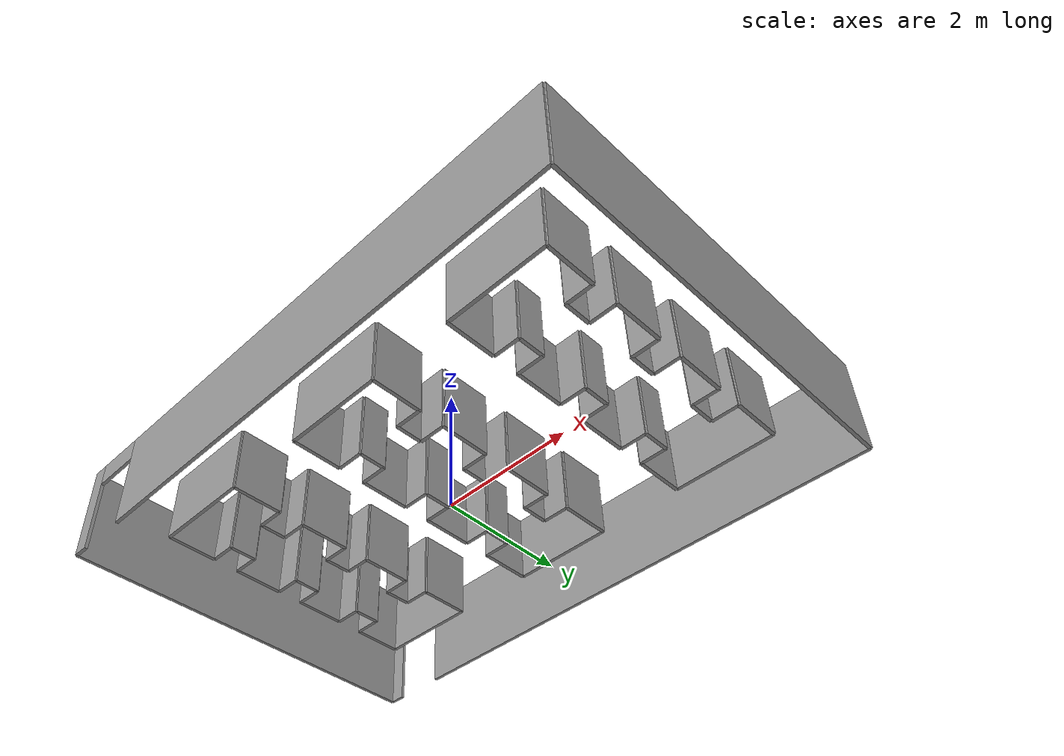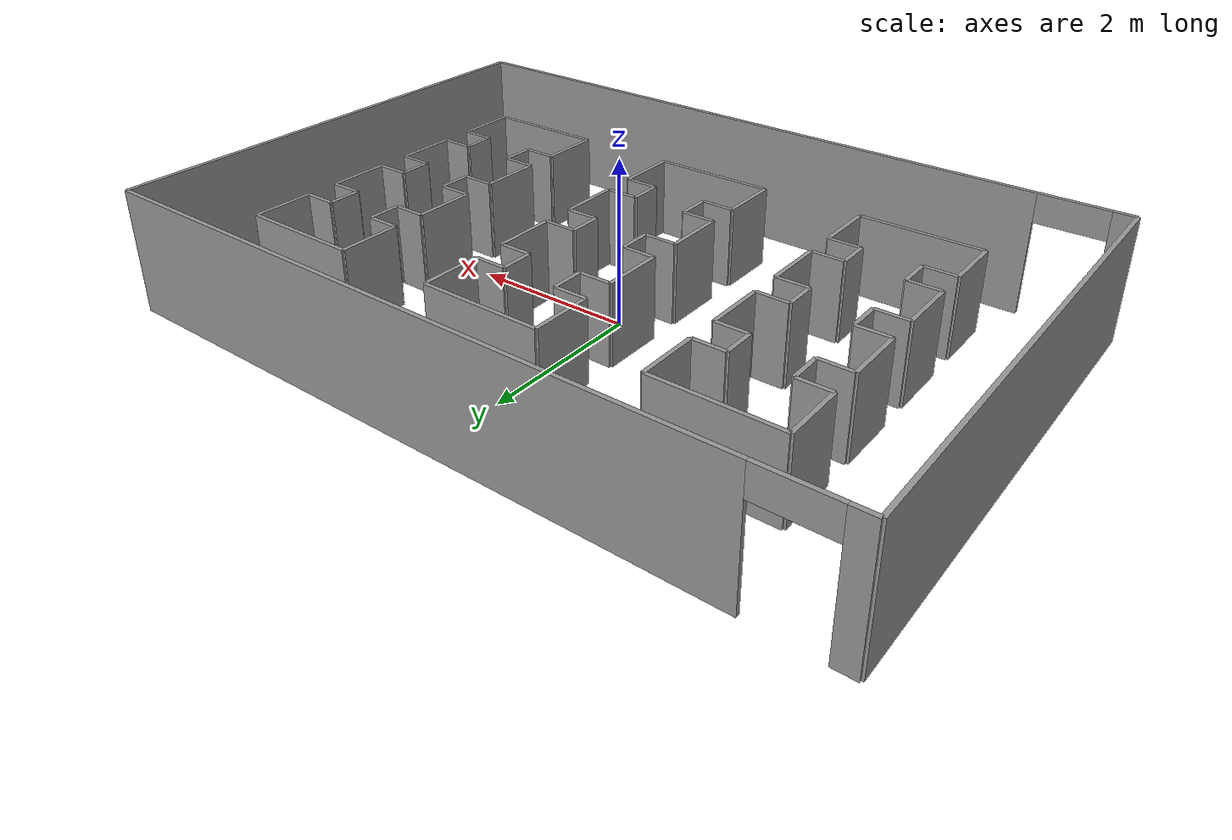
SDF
<?xml version='1.0'?>
<sdf version='1.7'>
	<model name='Storage_map'>
		<pose>0 0 0 0 0 0</pose>
		<static>1</static>
		<link name='Wall_up_1'>
			<collision name='Wall_up_1_Collision'>
				<geometry><box>
					<size> 0.25 0.05 1.5</size>
				</box></geometry>
				<pose>-4.375 3 0.75 0 0 0</pose>
			</collision>
			<visual name='Wall_up_1_Visual'>
				<geometry><box>
					<size> 0.25 0.05 1.5</size>
				</box></geometry>
				<pose>-4.375 3 0.75 0 0 0</pose>
				<material>
					<script><uri>file://media/materials/scripts/gazebo.material</uri><name>Gazebo/Grey</name></script>
					<ambient>1 1 1 1</ambient>
				</material>
			</visual>
		</link>
		<link name='Wall_up_2'>
			<collision name='Wall_up_2_Collision'>
				<geometry><box>
					<size> 0.7999999999999998 0.05 0.3500000000000001</size>
				</box></geometry>
				<pose>-3.85 3 1.325 0 0 0</pose>
			</collision>
			<visual name='Wall_up_2_Visual'>
				<geometry><box>
					<size> 0.7999999999999998 0.05 0.3500000000000001</size>
				</box></geometry>
				<pose>-3.85 3 1.325 0 0 0</pose>
				<material>
					<script><uri>file://media/materials/scripts/gazebo.material</uri><name>Gazebo/Grey</name></script>
					<ambient>1 1 1 1</ambient>
				</material>
			</visual>
		</link>
		<link name='Wall_up_3'>
			<collision name='Wall_up_3_Collision'>
				<geometry><box>
					<size> 7.95 0.05 1.5</size>
				</box></geometry>
				<pose>0.5249999999999999 3 0.75 0 0 0</pose>
			</collision>
			<visual name='Wall_up_3_Visual'>
				<geometry><box>
					<size> 7.95 0.05 1.5</size>
				</box></geometry>
				<pose>0.5249999999999999 3 0.75 0 0 0</pose>
				<material>
					<script><uri>file://media/materials/scripts/gazebo.material</uri><name>Gazebo/Grey</name></script>
					<ambient>1 1 1 1</ambient>
				</material>
			</visual>
		</link>
		<link name='Wall_right'>
			<collision name='Wall_right_Collision'>
				<geometry><box>
					<size> 0.05 6 1.5</size>
				</box></geometry>
				<pose>4.5 0.0 0.75 0 0 0</pose>
			</collision>
			<visual name='Wall_right_Visual'>
				<geometry><box>
					<size> 0.05 6 1.5</size>
				</box></geometry>
				<pose>4.5 0.0 0.75 0 0 0</pose>
				<material>
					<script><uri>file://media/materials/scripts/gazebo.material</uri><name>Gazebo/Grey</name></script>
					<ambient>1 1 1 1</ambient>
				</material>
			</visual>
		</link>
		<link name='Wall_down_1'>
			<collision name='Wall_down_1_Collision'>
				<geometry><box>
					<size> 7.95 0.05 1.5</size>
				</box></geometry>
				<pose>0.5249999999999999 -3 0.75 0 0 0</pose>
			</collision>
			<visual name='Wall_down_1_Visual'>
				<geometry><box>
					<size> 7.95 0.05 1.5</size>
				</box></geometry>
				<pose>0.5249999999999999 -3 0.75 0 0 0</pose>
				<material>
					<script><uri>file://media/materials/scripts/gazebo.material</uri><name>Gazebo/Grey</name></script>
					<ambient>1 1 1 1</ambient>
				</material>
			</visual>
		</link>
		<link name='Wall_down_2'>
			<collision name='Wall_down_2_Collision'>
				<geometry><box>
					<size> 0.7999999999999998 0.05 0.3500000000000001</size>
				</box></geometry>
				<pose>-3.85 -3 1.325 0 0 0</pose>
			</collision>
			<visual name='Wall_down_2_Visual'>
				<geometry><box>
					<size> 0.7999999999999998 0.05 0.3500000000000001</size>
				</box></geometry>
				<pose>-3.85 -3 1.325 0 0 0</pose>
				<material>
					<script><uri>file://media/materials/scripts/gazebo.material</uri><name>Gazebo/Grey</name></script>
					<ambient>1 1 1 1</ambient>
				</material>
			</visual>
		</link>
		<link name='Wall_down_3'>
			<collision name='Wall_down_3_Collision'>
				<geometry><box>
					<size> 0.25 0.05 1.5</size>
				</box></geometry>
				<pose>-4.375 -3 0.75 0 0 0</pose>
			</collision>
			<visual name='Wall_down_3_Visual'>
				<geometry><box>
					<size> 0.25 0.05 1.5</size>
				</box></geometry>
				<pose>-4.375 -3 0.75 0 0 0</pose>
				<material>
					<script><uri>file://media/materials/scripts/gazebo.material</uri><name>Gazebo/Grey</name></script>
					<ambient>1 1 1 1</ambient>
				</material>
			</visual>
		</link>
		<link name='Wall_left'>
			<collision name='Wall_left_Collision'>
				<geometry><box>
					<size> 0.05 6 1.5</size>
				</box></geometry>
				<pose>-4.5 0.0 0.75 0 0 0</pose>
			</collision>
			<visual name='Wall_left_Visual'>
				<geometry><box>
					<size> 0.05 6 1.5</size>
				</box></geometry>
				<pose>-4.5 0.0 0.75 0 0 0</pose>
				<material>
					<script><uri>file://media/materials/scripts/gazebo.material</uri><name>Gazebo/Grey</name></script>
					<ambient>1 1 1 1</ambient>
				</material>
			</visual>
		</link>
		<link name='Wall_shell_0_wall_0'>
			<collision name='Wall_shell_0_wall_0_Collision'>
				<geometry><box>
					<size> 1.5 0.05 1</size>
				</box></geometry>
				<pose>-2.4699999999999998 1.9 0.5 0 0 0</pose>
			</collision>
			<visual name='Wall_shell_0_wall_0_Visual'>
				<geometry><box>
					<size> 1.5 0.05 1</size>
				</box></geometry>
				<pose>-2.4699999999999998 1.9 0.5 0 0 0</pose>
				<material>
					<script><uri>file://media/materials/scripts/gazebo.material</uri><name>Gazebo/Grey</name></script>
					<ambient>1 1 1 1</ambient>
				</material>
			</visual>
		</link>
		<link name='Wall_shell_0_wall_1'>
			<collision name='Wall_shell_0_wall_1_Collision'>
				<geometry><box>
					<size> 0.05 0.75 1</size>
				</box></geometry>
				<pose>-1.7199999999999998 1.525 0.5 0 0 0</pose>
			</collision>
			<visual name='Wall_shell_0_wall_1_Visual'>
				<geometry><box>
					<size> 0.05 0.75 1</size>
				</box></geometry>
				<pose>-1.7199999999999998 1.525 0.5 0 0 0</pose>
				<material>
					<script><uri>file://media/materials/scripts/gazebo.material</uri><name>Gazebo/Grey</name></script>
					<ambient>1 1 1 1</ambient>
				</material>
			</visual>
		</link>
		<link name='Wall_shell_0_wall_2'>
			<collision name='Wall_shell_0_wall_2_Collision'>
				<geometry><box>
					<size> 0.3999999999999999 0.05 1</size>
				</box></geometry>
				<pose>-1.9199999999999997 1.15 0.5 0 0 0</pose>
			</collision>
			<visual name='Wall_shell_0_wall_2_Visual'>
				<geometry><box>
					<size> 0.3999999999999999 0.05 1</size>
				</box></geometry>
				<pose>-1.9199999999999997 1.15 0.5 0 0 0</pose>
				<material>
					<script><uri>file://media/materials/scripts/gazebo.material</uri><name>Gazebo/Grey</name></script>
					<ambient>1 1 1 1</ambient>
				</material>
			</visual>
		</link>
		<link name='Wall_shell_0_wall_3'>
			<collision name='Wall_shell_0_wall_3_Collision'>
				<geometry><box>
					<size> 0.05 0.4 1</size>
				</box></geometry>
				<pose>-2.1199999999999997 0.95 0.5 0 0 0</pose>
			</collision>
			<visual name='Wall_shell_0_wall_3_Visual'>
				<geometry><box>
					<size> 0.05 0.4 1</size>
				</box></geometry>
				<pose>-2.1199999999999997 0.95 0.5 0 0 0</pose>
				<material>
					<script><uri>file://media/materials/scripts/gazebo.material</uri><name>Gazebo/Grey</name></script>
					<ambient>1 1 1 1</ambient>
				</material>
			</visual>
		</link>
		<link name='Wall_shell_0_wall_4'>
			<collision name='Wall_shell_0_wall_4_Collision'>
				<geometry><box>
					<size> 0.3999999999999999 0.05 1</size>
				</box></geometry>
				<pose>-1.9199999999999997 0.7499999999999999 0.5 0 0 0</pose>
			</collision>
			<visual name='Wall_shell_0_wall_4_Visual'>
				<geometry><box>
					<size> 0.3999999999999999 0.05 1</size>
				</box></geometry>
				<pose>-1.9199999999999997 0.7499999999999999 0.5 0 0 0</pose>
				<material>
					<script><uri>file://media/materials/scripts/gazebo.material</uri><name>Gazebo/Grey</name></script>
					<ambient>1 1 1 1</ambient>
				</material>
			</visual>
		</link>
		<link name='Wall_shell_0_wall_5'>
			<collision name='Wall_shell_0_wall_5_Collision'>
				<geometry><box>
					<size> 0.05 0.75 1</size>
				</box></geometry>
				<pose>-1.7199999999999998 0.3749999999999999 0.5 0 0 0</pose>
			</collision>
			<visual name='Wall_shell_0_wall_5_Visual'>
				<geometry><box>
					<size> 0.05 0.75 1</size>
				</box></geometry>
				<pose>-1.7199999999999998 0.3749999999999999 0.5 0 0 0</pose>
				<material>
					<script><uri>file://media/materials/scripts/gazebo.material</uri><name>Gazebo/Grey</name></script>
					<ambient>1 1 1 1</ambient>
				</material>
			</visual>
		</link>
		<link name='Wall_shell_0_wall_6'>
			<collision name='Wall_shell_0_wall_6_Collision'>
				<geometry><box>
					<size> 0.3999999999999999 0.05 1</size>
				</box></geometry>
				<pose>-1.9199999999999997 -1.1102230246251565e-16 0.5 0 0 0</pose>
			</collision>
			<visual name='Wall_shell_0_wall_6_Visual'>
				<geometry><box>
					<size> 0.3999999999999999 0.05 1</size>
				</box></geometry>
				<pose>-1.9199999999999997 -1.1102230246251565e-16 0.5 0 0 0</pose>
				<material>
					<script><uri>file://media/materials/scripts/gazebo.material</uri><name>Gazebo/Grey</name></script>
					<ambient>1 1 1 1</ambient>
				</material>
			</visual>
		</link>
		<link name='Wall_shell_0_wall_7'>
			<collision name='Wall_shell_0_wall_7_Collision'>
				<geometry><box>
					<size> 0.05 0.4 1</size>
				</box></geometry>
				<pose>-2.1199999999999997 -0.20000000000000012 0.5 0 0 0</pose>
			</collision>
			<visual name='Wall_shell_0_wall_7_Visual'>
				<geometry><box>
					<size> 0.05 0.4 1</size>
				</box></geometry>
				<pose>-2.1199999999999997 -0.20000000000000012 0.5 0 0 0</pose>
				<material>
					<script><uri>file://media/materials/scripts/gazebo.material</uri><name>Gazebo/Grey</name></script>
					<ambient>1 1 1 1</ambient>
				</material>
			</visual>
		</link>
		<link name='Wall_shell_0_wall_8'>
			<collision name='Wall_shell_0_wall_8_Collision'>
				<geometry><box>
					<size> 0.3999999999999999 0.05 1</size>
				</box></geometry>
				<pose>-1.9199999999999997 -0.40000000000000013 0.5 0 0 0</pose>
			</collision>
			<visual name='Wall_shell_0_wall_8_Visual'>
				<geometry><box>
					<size> 0.3999999999999999 0.05 1</size>
				</box></geometry>
				<pose>-1.9199999999999997 -0.40000000000000013 0.5 0 0 0</pose>
				<material>
					<script><uri>file://media/materials/scripts/gazebo.material</uri><name>Gazebo/Grey</name></script>
					<ambient>1 1 1 1</ambient>
				</material>
			</visual>
		</link>
		<link name='Wall_shell_0_wall_9'>
			<collision name='Wall_shell_0_wall_9_Collision'>
				<geometry><box>
					<size> 0.05 0.75 1</size>
				</box></geometry>
				<pose>-1.7199999999999998 -0.7750000000000001 0.5 0 0 0</pose>
			</collision>
			<visual name='Wall_shell_0_wall_9_Visual'>
				<geometry><box>
					<size> 0.05 0.75 1</size>
				</box></geometry>
				<pose>-1.7199999999999998 -0.7750000000000001 0.5 0 0 0</pose>
				<material>
					<script><uri>file://media/materials/scripts/gazebo.material</uri><name>Gazebo/Grey</name></script>
					<ambient>1 1 1 1</ambient>
				</material>
			</visual>
		</link>
		<link name='Wall_shell_0_wall_10'>
			<collision name='Wall_shell_0_wall_10_Collision'>
				<geometry><box>
					<size> 0.3999999999999999 0.05 1</size>
				</box></geometry>
				<pose>-1.9199999999999997 -1.1500000000000001 0.5 0 0 0</pose>
			</collision>
			<visual name='Wall_shell_0_wall_10_Visual'>
				<geometry><box>
					<size> 0.3999999999999999 0.05 1</size>
				</box></geometry>
				<pose>-1.9199999999999997 -1.1500000000000001 0.5 0 0 0</pose>
				<material>
					<script><uri>file://media/materials/scripts/gazebo.material</uri><name>Gazebo/Grey</name></script>
					<ambient>1 1 1 1</ambient>
				</material>
			</visual>
		</link>
		<link name='Wall_shell_0_wall_11'>
			<collision name='Wall_shell_0_wall_11_Collision'>
				<geometry><box>
					<size> 0.05 0.40000000000000013 1</size>
				</box></geometry>
				<pose>-2.1199999999999997 -1.35 0.5 0 0 0</pose>
			</collision>
			<visual name='Wall_shell_0_wall_11_Visual'>
				<geometry><box>
					<size> 0.05 0.40000000000000013 1</size>
				</box></geometry>
				<pose>-2.1199999999999997 -1.35 0.5 0 0 0</pose>
				<material>
					<script><uri>file://media/materials/scripts/gazebo.material</uri><name>Gazebo/Grey</name></script>
					<ambient>1 1 1 1</ambient>
				</material>
			</visual>
		</link>
		<link name='Wall_shell_0_wall_12'>
			<collision name='Wall_shell_0_wall_12_Collision'>
				<geometry><box>
					<size> 0.3999999999999999 0.05 1</size>
				</box></geometry>
				<pose>-1.9199999999999997 -1.5500000000000003 0.5 0 0 0</pose>
			</collision>
			<visual name='Wall_shell_0_wall_12_Visual'>
				<geometry><box>
					<size> 0.3999999999999999 0.05 1</size>
				</box></geometry>
				<pose>-1.9199999999999997 -1.5500000000000003 0.5 0 0 0</pose>
				<material>
					<script><uri>file://media/materials/scripts/gazebo.material</uri><name>Gazebo/Grey</name></script>
					<ambient>1 1 1 1</ambient>
				</material>
			</visual>
		</link>
		<link name='Wall_shell_0_wall_13'>
			<collision name='Wall_shell_0_wall_13_Collision'>
				<geometry><box>
					<size> 0.05 0.75 1</size>
				</box></geometry>
				<pose>-1.7199999999999998 -1.9250000000000003 0.5 0 0 0</pose>
			</collision>
			<visual name='Wall_shell_0_wall_13_Visual'>
				<geometry><box>
					<size> 0.05 0.75 1</size>
				</box></geometry>
				<pose>-1.7199999999999998 -1.9250000000000003 0.5 0 0 0</pose>
				<material>
					<script><uri>file://media/materials/scripts/gazebo.material</uri><name>Gazebo/Grey</name></script>
					<ambient>1 1 1 1</ambient>
				</material>
			</visual>
		</link>
		<link name='Wall_shell_0_wall_14'>
			<collision name='Wall_shell_0_wall_14_Collision'>
				<geometry><box>
					<size> 1.5 0.05 1</size>
				</box></geometry>
				<pose>-2.4699999999999998 -2.3000000000000003 0.5 0 0 0</pose>
			</collision>
			<visual name='Wall_shell_0_wall_14_Visual'>
				<geometry><box>
					<size> 1.5 0.05 1</size>
				</box></geometry>
				<pose>-2.4699999999999998 -2.3000000000000003 0.5 0 0 0</pose>
				<material>
					<script><uri>file://media/materials/scripts/gazebo.material</uri><name>Gazebo/Grey</name></script>
					<ambient>1 1 1 1</ambient>
				</material>
			</visual>
		</link>
		<link name='Wall_shell_0_wall_15'>
			<collision name='Wall_shell_0_wall_15_Collision'>
				<geometry><box>
					<size> 0.05 0.75 1</size>
				</box></geometry>
				<pose>-3.2199999999999998 -1.9250000000000003 0.5 0 0 0</pose>
			</collision>
			<visual name='Wall_shell_0_wall_15_Visual'>
				<geometry><box>
					<size> 0.05 0.75 1</size>
				</box></geometry>
				<pose>-3.2199999999999998 -1.9250000000000003 0.5 0 0 0</pose>
				<material>
					<script><uri>file://media/materials/scripts/gazebo.material</uri><name>Gazebo/Grey</name></script>
					<ambient>1 1 1 1</ambient>
				</material>
			</visual>
		</link>
		<link name='Wall_shell_0_wall_16'>
			<collision name='Wall_shell_0_wall_16_Collision'>
				<geometry><box>
					<size> 0.3999999999999999 0.05 1</size>
				</box></geometry>
				<pose>-3.0199999999999996 -1.5500000000000003 0.5 0 0 0</pose>
			</collision>
			<visual name='Wall_shell_0_wall_16_Visual'>
				<geometry><box>
					<size> 0.3999999999999999 0.05 1</size>
				</box></geometry>
				<pose>-3.0199999999999996 -1.5500000000000003 0.5 0 0 0</pose>
				<material>
					<script><uri>file://media/materials/scripts/gazebo.material</uri><name>Gazebo/Grey</name></script>
					<ambient>1 1 1 1</ambient>
				</material>
			</visual>
		</link>
		<link name='Wall_shell_0_wall_17'>
			<collision name='Wall_shell_0_wall_17_Collision'>
				<geometry><box>
					<size> 0.05 0.3999999999999999 1</size>
				</box></geometry>
				<pose>-2.82 -1.3500000000000003 0.5 0 0 0</pose>
			</collision>
			<visual name='Wall_shell_0_wall_17_Visual'>
				<geometry><box>
					<size> 0.05 0.3999999999999999 1</size>
				</box></geometry>
				<pose>-2.82 -1.3500000000000003 0.5 0 0 0</pose>
				<material>
					<script><uri>file://media/materials/scripts/gazebo.material</uri><name>Gazebo/Grey</name></script>
					<ambient>1 1 1 1</ambient>
				</material>
			</visual>
		</link>
		<link name='Wall_shell_0_wall_18'>
			<collision name='Wall_shell_0_wall_18_Collision'>
				<geometry><box>
					<size> 0.3999999999999999 0.05 1</size>
				</box></geometry>
				<pose>-3.0199999999999996 -1.1500000000000004 0.5 0 0 0</pose>
			</collision>
			<visual name='Wall_shell_0_wall_18_Visual'>
				<geometry><box>
					<size> 0.3999999999999999 0.05 1</size>
				</box></geometry>
				<pose>-3.0199999999999996 -1.1500000000000004 0.5 0 0 0</pose>
				<material>
					<script><uri>file://media/materials/scripts/gazebo.material</uri><name>Gazebo/Grey</name></script>
					<ambient>1 1 1 1</ambient>
				</material>
			</visual>
		</link>
		<link name='Wall_shell_0_wall_19'>
			<collision name='Wall_shell_0_wall_19_Collision'>
				<geometry><box>
					<size> 0.05 0.75 1</size>
				</box></geometry>
				<pose>-3.2199999999999998 -0.7750000000000004 0.5 0 0 0</pose>
			</collision>
			<visual name='Wall_shell_0_wall_19_Visual'>
				<geometry><box>
					<size> 0.05 0.75 1</size>
				</box></geometry>
				<pose>-3.2199999999999998 -0.7750000000000004 0.5 0 0 0</pose>
				<material>
					<script><uri>file://media/materials/scripts/gazebo.material</uri><name>Gazebo/Grey</name></script>
					<ambient>1 1 1 1</ambient>
				</material>
			</visual>
		</link>
		<link name='Wall_shell_0_wall_20'>
			<collision name='Wall_shell_0_wall_20_Collision'>
				<geometry><box>
					<size> 0.3999999999999999 0.05 1</size>
				</box></geometry>
				<pose>-3.0199999999999996 -0.40000000000000036 0.5 0 0 0</pose>
			</collision>
			<visual name='Wall_shell_0_wall_20_Visual'>
				<geometry><box>
					<size> 0.3999999999999999 0.05 1</size>
				</box></geometry>
				<pose>-3.0199999999999996 -0.40000000000000036 0.5 0 0 0</pose>
				<material>
					<script><uri>file://media/materials/scripts/gazebo.material</uri><name>Gazebo/Grey</name></script>
					<ambient>1 1 1 1</ambient>
				</material>
			</visual>
		</link>
		<link name='Wall_shell_0_wall_21'>
			<collision name='Wall_shell_0_wall_21_Collision'>
				<geometry><box>
					<size> 0.05 0.4 1</size>
				</box></geometry>
				<pose>-2.82 -0.20000000000000034 0.5 0 0 0</pose>
			</collision>
			<visual name='Wall_shell_0_wall_21_Visual'>
				<geometry><box>
					<size> 0.05 0.4 1</size>
				</box></geometry>
				<pose>-2.82 -0.20000000000000034 0.5 0 0 0</pose>
				<material>
					<script><uri>file://media/materials/scripts/gazebo.material</uri><name>Gazebo/Grey</name></script>
					<ambient>1 1 1 1</ambient>
				</material>
			</visual>
		</link>
		<link name='Wall_shell_0_wall_22'>
			<collision name='Wall_shell_0_wall_22_Collision'>
				<geometry><box>
					<size> 0.3999999999999999 0.05 1</size>
				</box></geometry>
				<pose>-3.0199999999999996 -3.3306690738754696e-16 0.5 0 0 0</pose>
			</collision>
			<visual name='Wall_shell_0_wall_22_Visual'>
				<geometry><box>
					<size> 0.3999999999999999 0.05 1</size>
				</box></geometry>
				<pose>-3.0199999999999996 -3.3306690738754696e-16 0.5 0 0 0</pose>
				<material>
					<script><uri>file://media/materials/scripts/gazebo.material</uri><name>Gazebo/Grey</name></script>
					<ambient>1 1 1 1</ambient>
				</material>
			</visual>
		</link>
		<link name='Wall_shell_0_wall_23'>
			<collision name='Wall_shell_0_wall_23_Collision'>
				<geometry><box>
					<size> 0.05 0.75 1</size>
				</box></geometry>
				<pose>-3.2199999999999998 0.37499999999999967 0.5 0 0 0</pose>
			</collision>
			<visual name='Wall_shell_0_wall_23_Visual'>
				<geometry><box>
					<size> 0.05 0.75 1</size>
				</box></geometry>
				<pose>-3.2199999999999998 0.37499999999999967 0.5 0 0 0</pose>
				<material>
					<script><uri>file://media/materials/scripts/gazebo.material</uri><name>Gazebo/Grey</name></script>
					<ambient>1 1 1 1</ambient>
				</material>
			</visual>
		</link>
		<link name='Wall_shell_0_wall_24'>
			<collision name='Wall_shell_0_wall_24_Collision'>
				<geometry><box>
					<size> 0.3999999999999999 0.05 1</size>
				</box></geometry>
				<pose>-3.0199999999999996 0.7499999999999997 0.5 0 0 0</pose>
			</collision>
			<visual name='Wall_shell_0_wall_24_Visual'>
				<geometry><box>
					<size> 0.3999999999999999 0.05 1</size>
				</box></geometry>
				<pose>-3.0199999999999996 0.7499999999999997 0.5 0 0 0</pose>
				<material>
					<script><uri>file://media/materials/scripts/gazebo.material</uri><name>Gazebo/Grey</name></script>
					<ambient>1 1 1 1</ambient>
				</material>
			</visual>
		</link>
		<link name='Wall_shell_0_wall_25'>
			<collision name='Wall_shell_0_wall_25_Collision'>
				<geometry><box>
					<size> 0.05 0.4 1</size>
				</box></geometry>
				<pose>-2.82 0.9499999999999997 0.5 0 0 0</pose>
			</collision>
			<visual name='Wall_shell_0_wall_25_Visual'>
				<geometry><box>
					<size> 0.05 0.4 1</size>
				</box></geometry>
				<pose>-2.82 0.9499999999999997 0.5 0 0 0</pose>
				<material>
					<script><uri>file://media/materials/scripts/gazebo.material</uri><name>Gazebo/Grey</name></script>
					<ambient>1 1 1 1</ambient>
				</material>
			</visual>
		</link>
		<link name='Wall_shell_0_wall_26'>
			<collision name='Wall_shell_0_wall_26_Collision'>
				<geometry><box>
					<size> 0.3999999999999999 0.05 1</size>
				</box></geometry>
				<pose>-3.0199999999999996 1.1499999999999997 0.5 0 0 0</pose>
			</collision>
			<visual name='Wall_shell_0_wall_26_Visual'>
				<geometry><box>
					<size> 0.3999999999999999 0.05 1</size>
				</box></geometry>
				<pose>-3.0199999999999996 1.1499999999999997 0.5 0 0 0</pose>
				<material>
					<script><uri>file://media/materials/scripts/gazebo.material</uri><name>Gazebo/Grey</name></script>
					<ambient>1 1 1 1</ambient>
				</material>
			</visual>
		</link>
		<link name='Wall_shell_0_wall_27'>
			<collision name='Wall_shell_0_wall_27_Collision'>
				<geometry><box>
					<size> 0.05 0.75 1</size>
				</box></geometry>
				<pose>-3.2199999999999998 1.5249999999999997 0.5 0 0 0</pose>
			</collision>
			<visual name='Wall_shell_0_wall_27_Visual'>
				<geometry><box>
					<size> 0.05 0.75 1</size>
				</box></geometry>
				<pose>-3.2199999999999998 1.5249999999999997 0.5 0 0 0</pose>
				<material>
					<script><uri>file://media/materials/scripts/gazebo.material</uri><name>Gazebo/Grey</name></script>
					<ambient>1 1 1 1</ambient>
				</material>
			</visual>
		</link>
		<link name='Wall_shell_1_wall_0'>
			<collision name='Wall_shell_1_wall_0_Collision'>
				<geometry><box>
					<size> 1.5 0.05 1</size>
				</box></geometry>
				<pose>0.29000000000000026 1.9 0.5 0 0 0</pose>
			</collision>
			<visual name='Wall_shell_1_wall_0_Visual'>
				<geometry><box>
					<size> 1.5 0.05 1</size>
				</box></geometry>
				<pose>0.29000000000000026 1.9 0.5 0 0 0</pose>
				<material>
					<script><uri>file://media/materials/scripts/gazebo.material</uri><name>Gazebo/Grey</name></script>
					<ambient>1 1 1 1</ambient>
				</material>
			</visual>
		</link>
		<link name='Wall_shell_1_wall_1'>
			<collision name='Wall_shell_1_wall_1_Collision'>
				<geometry><box>
					<size> 0.05 0.75 1</size>
				</box></geometry>
				<pose>1.0400000000000003 1.525 0.5 0 0 0</pose>
			</collision>
			<visual name='Wall_shell_1_wall_1_Visual'>
				<geometry><box>
					<size> 0.05 0.75 1</size>
				</box></geometry>
				<pose>1.0400000000000003 1.525 0.5 0 0 0</pose>
				<material>
					<script><uri>file://media/materials/scripts/gazebo.material</uri><name>Gazebo/Grey</name></script>
					<ambient>1 1 1 1</ambient>
				</material>
			</visual>
		</link>
		<link name='Wall_shell_1_wall_2'>
			<collision name='Wall_shell_1_wall_2_Collision'>
				<geometry><box>
					<size> 0.4 0.05 1</size>
				</box></geometry>
				<pose>0.8400000000000003 1.15 0.5 0 0 0</pose>
			</collision>
			<visual name='Wall_shell_1_wall_2_Visual'>
				<geometry><box>
					<size> 0.4 0.05 1</size>
				</box></geometry>
				<pose>0.8400000000000003 1.15 0.5 0 0 0</pose>
				<material>
					<script><uri>file://media/materials/scripts/gazebo.material</uri><name>Gazebo/Grey</name></script>
					<ambient>1 1 1 1</ambient>
				</material>
			</visual>
		</link>
		<link name='Wall_shell_1_wall_3'>
			<collision name='Wall_shell_1_wall_3_Collision'>
				<geometry><box>
					<size> 0.05 0.4 1</size>
				</box></geometry>
				<pose>0.6400000000000002 0.95 0.5 0 0 0</pose>
			</collision>
			<visual name='Wall_shell_1_wall_3_Visual'>
				<geometry><box>
					<size> 0.05 0.4 1</size>
				</box></geometry>
				<pose>0.6400000000000002 0.95 0.5 0 0 0</pose>
				<material>
					<script><uri>file://media/materials/scripts/gazebo.material</uri><name>Gazebo/Grey</name></script>
					<ambient>1 1 1 1</ambient>
				</material>
			</visual>
		</link>
		<link name='Wall_shell_1_wall_4'>
			<collision name='Wall_shell_1_wall_4_Collision'>
				<geometry><box>
					<size> 0.4 0.05 1</size>
				</box></geometry>
				<pose>0.8400000000000003 0.7499999999999999 0.5 0 0 0</pose>
			</collision>
			<visual name='Wall_shell_1_wall_4_Visual'>
				<geometry><box>
					<size> 0.4 0.05 1</size>
				</box></geometry>
				<pose>0.8400000000000003 0.7499999999999999 0.5 0 0 0</pose>
				<material>
					<script><uri>file://media/materials/scripts/gazebo.material</uri><name>Gazebo/Grey</name></script>
					<ambient>1 1 1 1</ambient>
				</material>
			</visual>
		</link>
		<link name='Wall_shell_1_wall_5'>
			<collision name='Wall_shell_1_wall_5_Collision'>
				<geometry><box>
					<size> 0.05 0.75 1</size>
				</box></geometry>
				<pose>1.0400000000000003 0.3749999999999999 0.5 0 0 0</pose>
			</collision>
			<visual name='Wall_shell_1_wall_5_Visual'>
				<geometry><box>
					<size> 0.05 0.75 1</size>
				</box></geometry>
				<pose>1.0400000000000003 0.3749999999999999 0.5 0 0 0</pose>
				<material>
					<script><uri>file://media/materials/scripts/gazebo.material</uri><name>Gazebo/Grey</name></script>
					<ambient>1 1 1 1</ambient>
				</material>
			</visual>
		</link>
		<link name='Wall_shell_1_wall_6'>
			<collision name='Wall_shell_1_wall_6_Collision'>
				<geometry><box>
					<size> 0.4 0.05 1</size>
				</box></geometry>
				<pose>0.8400000000000003 -1.1102230246251565e-16 0.5 0 0 0</pose>
			</collision>
			<visual name='Wall_shell_1_wall_6_Visual'>
				<geometry><box>
					<size> 0.4 0.05 1</size>
				</box></geometry>
				<pose>0.8400000000000003 -1.1102230246251565e-16 0.5 0 0 0</pose>
				<material>
					<script><uri>file://media/materials/scripts/gazebo.material</uri><name>Gazebo/Grey</name></script>
					<ambient>1 1 1 1</ambient>
				</material>
			</visual>
		</link>
		<link name='Wall_shell_1_wall_7'>
			<collision name='Wall_shell_1_wall_7_Collision'>
				<geometry><box>
					<size> 0.05 0.4 1</size>
				</box></geometry>
				<pose>0.6400000000000002 -0.20000000000000012 0.5 0 0 0</pose>
			</collision>
			<visual name='Wall_shell_1_wall_7_Visual'>
				<geometry><box>
					<size> 0.05 0.4 1</size>
				</box></geometry>
				<pose>0.6400000000000002 -0.20000000000000012 0.5 0 0 0</pose>
				<material>
					<script><uri>file://media/materials/scripts/gazebo.material</uri><name>Gazebo/Grey</name></script>
					<ambient>1 1 1 1</ambient>
				</material>
			</visual>
		</link>
		<link name='Wall_shell_1_wall_8'>
			<collision name='Wall_shell_1_wall_8_Collision'>
				<geometry><box>
					<size> 0.4 0.05 1</size>
				</box></geometry>
				<pose>0.8400000000000003 -0.40000000000000013 0.5 0 0 0</pose>
			</collision>
			<visual name='Wall_shell_1_wall_8_Visual'>
				<geometry><box>
					<size> 0.4 0.05 1</size>
				</box></geometry>
				<pose>0.8400000000000003 -0.40000000000000013 0.5 0 0 0</pose>
				<material>
					<script><uri>file://media/materials/scripts/gazebo.material</uri><name>Gazebo/Grey</name></script>
					<ambient>1 1 1 1</ambient>
				</material>
			</visual>
		</link>
		<link name='Wall_shell_1_wall_9'>
			<collision name='Wall_shell_1_wall_9_Collision'>
				<geometry><box>
					<size> 0.05 0.75 1</size>
				</box></geometry>
				<pose>1.0400000000000003 -0.7750000000000001 0.5 0 0 0</pose>
			</collision>
			<visual name='Wall_shell_1_wall_9_Visual'>
				<geometry><box>
					<size> 0.05 0.75 1</size>
				</box></geometry>
				<pose>1.0400000000000003 -0.7750000000000001 0.5 0 0 0</pose>
				<material>
					<script><uri>file://media/materials/scripts/gazebo.material</uri><name>Gazebo/Grey</name></script>
					<ambient>1 1 1 1</ambient>
				</material>
			</visual>
		</link>
		<link name='Wall_shell_1_wall_10'>
			<collision name='Wall_shell_1_wall_10_Collision'>
				<geometry><box>
					<size> 0.4 0.05 1</size>
				</box></geometry>
				<pose>0.8400000000000003 -1.1500000000000001 0.5 0 0 0</pose>
			</collision>
			<visual name='Wall_shell_1_wall_10_Visual'>
				<geometry><box>
					<size> 0.4 0.05 1</size>
				</box></geometry>
				<pose>0.8400000000000003 -1.1500000000000001 0.5 0 0 0</pose>
				<material>
					<script><uri>file://media/materials/scripts/gazebo.material</uri><name>Gazebo/Grey</name></script>
					<ambient>1 1 1 1</ambient>
				</material>
			</visual>
		</link>
		<link name='Wall_shell_1_wall_11'>
			<collision name='Wall_shell_1_wall_11_Collision'>
				<geometry><box>
					<size> 0.05 0.40000000000000013 1</size>
				</box></geometry>
				<pose>0.6400000000000002 -1.35 0.5 0 0 0</pose>
			</collision>
			<visual name='Wall_shell_1_wall_11_Visual'>
				<geometry><box>
					<size> 0.05 0.40000000000000013 1</size>
				</box></geometry>
				<pose>0.6400000000000002 -1.35 0.5 0 0 0</pose>
				<material>
					<script><uri>file://media/materials/scripts/gazebo.material</uri><name>Gazebo/Grey</name></script>
					<ambient>1 1 1 1</ambient>
				</material>
			</visual>
		</link>
		<link name='Wall_shell_1_wall_12'>
			<collision name='Wall_shell_1_wall_12_Collision'>
				<geometry><box>
					<size> 0.4 0.05 1</size>
				</box></geometry>
				<pose>0.8400000000000003 -1.5500000000000003 0.5 0 0 0</pose>
			</collision>
			<visual name='Wall_shell_1_wall_12_Visual'>
				<geometry><box>
					<size> 0.4 0.05 1</size>
				</box></geometry>
				<pose>0.8400000000000003 -1.5500000000000003 0.5 0 0 0</pose>
				<material>
					<script><uri>file://media/materials/scripts/gazebo.material</uri><name>Gazebo/Grey</name></script>
					<ambient>1 1 1 1</ambient>
				</material>
			</visual>
		</link>
		<link name='Wall_shell_1_wall_13'>
			<collision name='Wall_shell_1_wall_13_Collision'>
				<geometry><box>
					<size> 0.05 0.75 1</size>
				</box></geometry>
				<pose>1.0400000000000003 -1.9250000000000003 0.5 0 0 0</pose>
			</collision>
			<visual name='Wall_shell_1_wall_13_Visual'>
				<geometry><box>
					<size> 0.05 0.75 1</size>
				</box></geometry>
				<pose>1.0400000000000003 -1.9250000000000003 0.5 0 0 0</pose>
				<material>
					<script><uri>file://media/materials/scripts/gazebo.material</uri><name>Gazebo/Grey</name></script>
					<ambient>1 1 1 1</ambient>
				</material>
			</visual>
		</link>
		<link name='Wall_shell_1_wall_14'>
			<collision name='Wall_shell_1_wall_14_Collision'>
				<geometry><box>
					<size> 1.5 0.05 1</size>
				</box></geometry>
				<pose>0.29000000000000026 -2.3000000000000003 0.5 0 0 0</pose>
			</collision>
			<visual name='Wall_shell_1_wall_14_Visual'>
				<geometry><box>
					<size> 1.5 0.05 1</size>
				</box></geometry>
				<pose>0.29000000000000026 -2.3000000000000003 0.5 0 0 0</pose>
				<material>
					<script><uri>file://media/materials/scripts/gazebo.material</uri><name>Gazebo/Grey</name></script>
					<ambient>1 1 1 1</ambient>
				</material>
			</visual>
		</link>
		<link name='Wall_shell_1_wall_15'>
			<collision name='Wall_shell_1_wall_15_Collision'>
				<geometry><box>
					<size> 0.05 0.75 1</size>
				</box></geometry>
				<pose>-0.45999999999999974 -1.9250000000000003 0.5 0 0 0</pose>
			</collision>
			<visual name='Wall_shell_1_wall_15_Visual'>
				<geometry><box>
					<size> 0.05 0.75 1</size>
				</box></geometry>
				<pose>-0.45999999999999974 -1.9250000000000003 0.5 0 0 0</pose>
				<material>
					<script><uri>file://media/materials/scripts/gazebo.material</uri><name>Gazebo/Grey</name></script>
					<ambient>1 1 1 1</ambient>
				</material>
			</visual>
		</link>
		<link name='Wall_shell_1_wall_16'>
			<collision name='Wall_shell_1_wall_16_Collision'>
				<geometry><box>
					<size> 0.4 0.05 1</size>
				</box></geometry>
				<pose>-0.25999999999999973 -1.5500000000000003 0.5 0 0 0</pose>
			</collision>
			<visual name='Wall_shell_1_wall_16_Visual'>
				<geometry><box>
					<size> 0.4 0.05 1</size>
				</box></geometry>
				<pose>-0.25999999999999973 -1.5500000000000003 0.5 0 0 0</pose>
				<material>
					<script><uri>file://media/materials/scripts/gazebo.material</uri><name>Gazebo/Grey</name></script>
					<ambient>1 1 1 1</ambient>
				</material>
			</visual>
		</link>
		<link name='Wall_shell_1_wall_17'>
			<collision name='Wall_shell_1_wall_17_Collision'>
				<geometry><box>
					<size> 0.05 0.3999999999999999 1</size>
				</box></geometry>
				<pose>-0.05999999999999972 -1.3500000000000003 0.5 0 0 0</pose>
			</collision>
			<visual name='Wall_shell_1_wall_17_Visual'>
				<geometry><box>
					<size> 0.05 0.3999999999999999 1</size>
				</box></geometry>
				<pose>-0.05999999999999972 -1.3500000000000003 0.5 0 0 0</pose>
				<material>
					<script><uri>file://media/materials/scripts/gazebo.material</uri><name>Gazebo/Grey</name></script>
					<ambient>1 1 1 1</ambient>
				</material>
			</visual>
		</link>
		<link name='Wall_shell_1_wall_18'>
			<collision name='Wall_shell_1_wall_18_Collision'>
				<geometry><box>
					<size> 0.4 0.05 1</size>
				</box></geometry>
				<pose>-0.25999999999999973 -1.1500000000000004 0.5 0 0 0</pose>
			</collision>
			<visual name='Wall_shell_1_wall_18_Visual'>
				<geometry><box>
					<size> 0.4 0.05 1</size>
				</box></geometry>
				<pose>-0.25999999999999973 -1.1500000000000004 0.5 0 0 0</pose>
				<material>
					<script><uri>file://media/materials/scripts/gazebo.material</uri><name>Gazebo/Grey</name></script>
					<ambient>1 1 1 1</ambient>
				</material>
			</visual>
		</link>
		<link name='Wall_shell_1_wall_19'>
			<collision name='Wall_shell_1_wall_19_Collision'>
				<geometry><box>
					<size> 0.05 0.75 1</size>
				</box></geometry>
				<pose>-0.45999999999999974 -0.7750000000000004 0.5 0 0 0</pose>
			</collision>
			<visual name='Wall_shell_1_wall_19_Visual'>
				<geometry><box>
					<size> 0.05 0.75 1</size>
				</box></geometry>
				<pose>-0.45999999999999974 -0.7750000000000004 0.5 0 0 0</pose>
				<material>
					<script><uri>file://media/materials/scripts/gazebo.material</uri><name>Gazebo/Grey</name></script>
					<ambient>1 1 1 1</ambient>
				</material>
			</visual>
		</link>
		<link name='Wall_shell_1_wall_20'>
			<collision name='Wall_shell_1_wall_20_Collision'>
				<geometry><box>
					<size> 0.4 0.05 1</size>
				</box></geometry>
				<pose>-0.25999999999999973 -0.40000000000000036 0.5 0 0 0</pose>
			</collision>
			<visual name='Wall_shell_1_wall_20_Visual'>
				<geometry><box>
					<size> 0.4 0.05 1</size>
				</box></geometry>
				<pose>-0.25999999999999973 -0.40000000000000036 0.5 0 0 0</pose>
				<material>
					<script><uri>file://media/materials/scripts/gazebo.material</uri><name>Gazebo/Grey</name></script>
					<ambient>1 1 1 1</ambient>
				</material>
			</visual>
		</link>
		<link name='Wall_shell_1_wall_21'>
			<collision name='Wall_shell_1_wall_21_Collision'>
				<geometry><box>
					<size> 0.05 0.4 1</size>
				</box></geometry>
				<pose>-0.05999999999999972 -0.20000000000000034 0.5 0 0 0</pose>
			</collision>
			<visual name='Wall_shell_1_wall_21_Visual'>
				<geometry><box>
					<size> 0.05 0.4 1</size>
				</box></geometry>
				<pose>-0.05999999999999972 -0.20000000000000034 0.5 0 0 0</pose>
				<material>
					<script><uri>file://media/materials/scripts/gazebo.material</uri><name>Gazebo/Grey</name></script>
					<ambient>1 1 1 1</ambient>
				</material>
			</visual>
		</link>
		<link name='Wall_shell_1_wall_22'>
			<collision name='Wall_shell_1_wall_22_Collision'>
				<geometry><box>
					<size> 0.4 0.05 1</size>
				</box></geometry>
				<pose>-0.25999999999999973 -3.3306690738754696e-16 0.5 0 0 0</pose>
			</collision>
			<visual name='Wall_shell_1_wall_22_Visual'>
				<geometry><box>
					<size> 0.4 0.05 1</size>
				</box></geometry>
				<pose>-0.25999999999999973 -3.3306690738754696e-16 0.5 0 0 0</pose>
				<material>
					<script><uri>file://media/materials/scripts/gazebo.material</uri><name>Gazebo/Grey</name></script>
					<ambient>1 1 1 1</ambient>
				</material>
			</visual>
		</link>
		<link name='Wall_shell_1_wall_23'>
			<collision name='Wall_shell_1_wall_23_Collision'>
				<geometry><box>
					<size> 0.05 0.75 1</size>
				</box></geometry>
				<pose>-0.45999999999999974 0.37499999999999967 0.5 0 0 0</pose>
			</collision>
			<visual name='Wall_shell_1_wall_23_Visual'>
				<geometry><box>
					<size> 0.05 0.75 1</size>
				</box></geometry>
				<pose>-0.45999999999999974 0.37499999999999967 0.5 0 0 0</pose>
				<material>
					<script><uri>file://media/materials/scripts/gazebo.material</uri><name>Gazebo/Grey</name></script>
					<ambient>1 1 1 1</ambient>
				</material>
			</visual>
		</link>
		<link name='Wall_shell_1_wall_24'>
			<collision name='Wall_shell_1_wall_24_Collision'>
				<geometry><box>
					<size> 0.4 0.05 1</size>
				</box></geometry>
				<pose>-0.25999999999999973 0.7499999999999997 0.5 0 0 0</pose>
			</collision>
			<visual name='Wall_shell_1_wall_24_Visual'>
				<geometry><box>
					<size> 0.4 0.05 1</size>
				</box></geometry>
				<pose>-0.25999999999999973 0.7499999999999997 0.5 0 0 0</pose>
				<material>
					<script><uri>file://media/materials/scripts/gazebo.material</uri><name>Gazebo/Grey</name></script>
					<ambient>1 1 1 1</ambient>
				</material>
			</visual>
		</link>
		<link name='Wall_shell_1_wall_25'>
			<collision name='Wall_shell_1_wall_25_Collision'>
				<geometry><box>
					<size> 0.05 0.4 1</size>
				</box></geometry>
				<pose>-0.05999999999999972 0.9499999999999997 0.5 0 0 0</pose>
			</collision>
			<visual name='Wall_shell_1_wall_25_Visual'>
				<geometry><box>
					<size> 0.05 0.4 1</size>
				</box></geometry>
				<pose>-0.05999999999999972 0.9499999999999997 0.5 0 0 0</pose>
				<material>
					<script><uri>file://media/materials/scripts/gazebo.material</uri><name>Gazebo/Grey</name></script>
					<ambient>1 1 1 1</ambient>
				</material>
			</visual>
		</link>
		<link name='Wall_shell_1_wall_26'>
			<collision name='Wall_shell_1_wall_26_Collision'>
				<geometry><box>
					<size> 0.4 0.05 1</size>
				</box></geometry>
				<pose>-0.25999999999999973 1.1499999999999997 0.5 0 0 0</pose>
			</collision>
			<visual name='Wall_shell_1_wall_26_Visual'>
				<geometry><box>
					<size> 0.4 0.05 1</size>
				</box></geometry>
				<pose>-0.25999999999999973 1.1499999999999997 0.5 0 0 0</pose>
				<material>
					<script><uri>file://media/materials/scripts/gazebo.material</uri><name>Gazebo/Grey</name></script>
					<ambient>1 1 1 1</ambient>
				</material>
			</visual>
		</link>
		<link name='Wall_shell_1_wall_27'>
			<collision name='Wall_shell_1_wall_27_Collision'>
				<geometry><box>
					<size> 0.05 0.75 1</size>
				</box></geometry>
				<pose>-0.45999999999999974 1.5249999999999997 0.5 0 0 0</pose>
			</collision>
			<visual name='Wall_shell_1_wall_27_Visual'>
				<geometry><box>
					<size> 0.05 0.75 1</size>
				</box></geometry>
				<pose>-0.45999999999999974 1.5249999999999997 0.5 0 0 0</pose>
				<material>
					<script><uri>file://media/materials/scripts/gazebo.material</uri><name>Gazebo/Grey</name></script>
					<ambient>1 1 1 1</ambient>
				</material>
			</visual>
		</link>
		<link name='Wall_shell_2_wall_0'>
			<collision name='Wall_shell_2_wall_0_Collision'>
				<geometry><box>
					<size> 1.5 0.05 1</size>
				</box></geometry>
				<pose>3.0500000000000003 1.9 0.5 0 0 0</pose>
			</collision>
			<visual name='Wall_shell_2_wall_0_Visual'>
				<geometry><box>
					<size> 1.5 0.05 1</size>
				</box></geometry>
				<pose>3.0500000000000003 1.9 0.5 0 0 0</pose>
				<material>
					<script><uri>file://media/materials/scripts/gazebo.material</uri><name>Gazebo/Grey</name></script>
					<ambient>1 1 1 1</ambient>
				</material>
			</visual>
		</link>
		<link name='Wall_shell_2_wall_1'>
			<collision name='Wall_shell_2_wall_1_Collision'>
				<geometry><box>
					<size> 0.05 0.75 1</size>
				</box></geometry>
				<pose>3.8000000000000003 1.525 0.5 0 0 0</pose>
			</collision>
			<visual name='Wall_shell_2_wall_1_Visual'>
				<geometry><box>
					<size> 0.05 0.75 1</size>
				</box></geometry>
				<pose>3.8000000000000003 1.525 0.5 0 0 0</pose>
				<material>
					<script><uri>file://media/materials/scripts/gazebo.material</uri><name>Gazebo/Grey</name></script>
					<ambient>1 1 1 1</ambient>
				</material>
			</visual>
		</link>
		<link name='Wall_shell_2_wall_2'>
			<collision name='Wall_shell_2_wall_2_Collision'>
				<geometry><box>
					<size> 0.3999999999999999 0.05 1</size>
				</box></geometry>
				<pose>3.6000000000000005 1.15 0.5 0 0 0</pose>
			</collision>
			<visual name='Wall_shell_2_wall_2_Visual'>
				<geometry><box>
					<size> 0.3999999999999999 0.05 1</size>
				</box></geometry>
				<pose>3.6000000000000005 1.15 0.5 0 0 0</pose>
				<material>
					<script><uri>file://media/materials/scripts/gazebo.material</uri><name>Gazebo/Grey</name></script>
					<ambient>1 1 1 1</ambient>
				</material>
			</visual>
		</link>
		<link name='Wall_shell_2_wall_3'>
			<collision name='Wall_shell_2_wall_3_Collision'>
				<geometry><box>
					<size> 0.05 0.4 1</size>
				</box></geometry>
				<pose>3.4000000000000004 0.95 0.5 0 0 0</pose>
			</collision>
			<visual name='Wall_shell_2_wall_3_Visual'>
				<geometry><box>
					<size> 0.05 0.4 1</size>
				</box></geometry>
				<pose>3.4000000000000004 0.95 0.5 0 0 0</pose>
				<material>
					<script><uri>file://media/materials/scripts/gazebo.material</uri><name>Gazebo/Grey</name></script>
					<ambient>1 1 1 1</ambient>
				</material>
			</visual>
		</link>
		<link name='Wall_shell_2_wall_4'>
			<collision name='Wall_shell_2_wall_4_Collision'>
				<geometry><box>
					<size> 0.3999999999999999 0.05 1</size>
				</box></geometry>
				<pose>3.6000000000000005 0.7499999999999999 0.5 0 0 0</pose>
			</collision>
			<visual name='Wall_shell_2_wall_4_Visual'>
				<geometry><box>
					<size> 0.3999999999999999 0.05 1</size>
				</box></geometry>
				<pose>3.6000000000000005 0.7499999999999999 0.5 0 0 0</pose>
				<material>
					<script><uri>file://media/materials/scripts/gazebo.material</uri><name>Gazebo/Grey</name></script>
					<ambient>1 1 1 1</ambient>
				</material>
			</visual>
		</link>
		<link name='Wall_shell_2_wall_5'>
			<collision name='Wall_shell_2_wall_5_Collision'>
				<geometry><box>
					<size> 0.05 0.75 1</size>
				</box></geometry>
				<pose>3.8000000000000003 0.3749999999999999 0.5 0 0 0</pose>
			</collision>
			<visual name='Wall_shell_2_wall_5_Visual'>
				<geometry><box>
					<size> 0.05 0.75 1</size>
				</box></geometry>
				<pose>3.8000000000000003 0.3749999999999999 0.5 0 0 0</pose>
				<material>
					<script><uri>file://media/materials/scripts/gazebo.material</uri><name>Gazebo/Grey</name></script>
					<ambient>1 1 1 1</ambient>
				</material>
			</visual>
		</link>
		<link name='Wall_shell_2_wall_6'>
			<collision name='Wall_shell_2_wall_6_Collision'>
				<geometry><box>
					<size> 0.3999999999999999 0.05 1</size>
				</box></geometry>
				<pose>3.6000000000000005 -1.1102230246251565e-16 0.5 0 0 0</pose>
			</collision>
			<visual name='Wall_shell_2_wall_6_Visual'>
				<geometry><box>
					<size> 0.3999999999999999 0.05 1</size>
				</box></geometry>
				<pose>3.6000000000000005 -1.1102230246251565e-16 0.5 0 0 0</pose>
				<material>
					<script><uri>file://media/materials/scripts/gazebo.material</uri><name>Gazebo/Grey</name></script>
					<ambient>1 1 1 1</ambient>
				</material>
			</visual>
		</link>
		<link name='Wall_shell_2_wall_7'>
			<collision name='Wall_shell_2_wall_7_Collision'>
				<geometry><box>
					<size> 0.05 0.4 1</size>
				</box></geometry>
				<pose>3.4000000000000004 -0.20000000000000012 0.5 0 0 0</pose>
			</collision>
			<visual name='Wall_shell_2_wall_7_Visual'>
				<geometry><box>
					<size> 0.05 0.4 1</size>
				</box></geometry>
				<pose>3.4000000000000004 -0.20000000000000012 0.5 0 0 0</pose>
				<material>
					<script><uri>file://media/materials/scripts/gazebo.material</uri><name>Gazebo/Grey</name></script>
					<ambient>1 1 1 1</ambient>
				</material>
			</visual>
		</link>
		<link name='Wall_shell_2_wall_8'>
			<collision name='Wall_shell_2_wall_8_Collision'>
				<geometry><box>
					<size> 0.3999999999999999 0.05 1</size>
				</box></geometry>
				<pose>3.6000000000000005 -0.40000000000000013 0.5 0 0 0</pose>
			</collision>
			<visual name='Wall_shell_2_wall_8_Visual'>
				<geometry><box>
					<size> 0.3999999999999999 0.05 1</size>
				</box></geometry>
				<pose>3.6000000000000005 -0.40000000000000013 0.5 0 0 0</pose>
				<material>
					<script><uri>file://media/materials/scripts/gazebo.material</uri><name>Gazebo/Grey</name></script>
					<ambient>1 1 1 1</ambient>
				</material>
			</visual>
		</link>
		<link name='Wall_shell_2_wall_9'>
			<collision name='Wall_shell_2_wall_9_Collision'>
				<geometry><box>
					<size> 0.05 0.75 1</size>
				</box></geometry>
				<pose>3.8000000000000003 -0.7750000000000001 0.5 0 0 0</pose>
			</collision>
			<visual name='Wall_shell_2_wall_9_Visual'>
				<geometry><box>
					<size> 0.05 0.75 1</size>
				</box></geometry>
				<pose>3.8000000000000003 -0.7750000000000001 0.5 0 0 0</pose>
				<material>
					<script><uri>file://media/materials/scripts/gazebo.material</uri><name>Gazebo/Grey</name></script>
					<ambient>1 1 1 1</ambient>
				</material>
			</visual>
		</link>
		<link name='Wall_shell_2_wall_10'>
			<collision name='Wall_shell_2_wall_10_Collision'>
				<geometry><box>
					<size> 0.3999999999999999 0.05 1</size>
				</box></geometry>
				<pose>3.6000000000000005 -1.1500000000000001 0.5 0 0 0</pose>
			</collision>
			<visual name='Wall_shell_2_wall_10_Visual'>
				<geometry><box>
					<size> 0.3999999999999999 0.05 1</size>
				</box></geometry>
				<pose>3.6000000000000005 -1.1500000000000001 0.5 0 0 0</pose>
				<material>
					<script><uri>file://media/materials/scripts/gazebo.material</uri><name>Gazebo/Grey</name></script>
					<ambient>1 1 1 1</ambient>
				</material>
			</visual>
		</link>
		<link name='Wall_shell_2_wall_11'>
			<collision name='Wall_shell_2_wall_11_Collision'>
				<geometry><box>
					<size> 0.05 0.40000000000000013 1</size>
				</box></geometry>
				<pose>3.4000000000000004 -1.35 0.5 0 0 0</pose>
			</collision>
			<visual name='Wall_shell_2_wall_11_Visual'>
				<geometry><box>
					<size> 0.05 0.40000000000000013 1</size>
				</box></geometry>
				<pose>3.4000000000000004 -1.35 0.5 0 0 0</pose>
				<material>
					<script><uri>file://media/materials/scripts/gazebo.material</uri><name>Gazebo/Grey</name></script>
					<ambient>1 1 1 1</ambient>
				</material>
			</visual>
		</link>
		<link name='Wall_shell_2_wall_12'>
			<collision name='Wall_shell_2_wall_12_Collision'>
				<geometry><box>
					<size> 0.3999999999999999 0.05 1</size>
				</box></geometry>
				<pose>3.6000000000000005 -1.5500000000000003 0.5 0 0 0</pose>
			</collision>
			<visual name='Wall_shell_2_wall_12_Visual'>
				<geometry><box>
					<size> 0.3999999999999999 0.05 1</size>
				</box></geometry>
				<pose>3.6000000000000005 -1.5500000000000003 0.5 0 0 0</pose>
				<material>
					<script><uri>file://media/materials/scripts/gazebo.material</uri><name>Gazebo/Grey</name></script>
					<ambient>1 1 1 1</ambient>
				</material>
			</visual>
		</link>
		<link name='Wall_shell_2_wall_13'>
			<collision name='Wall_shell_2_wall_13_Collision'>
				<geometry><box>
					<size> 0.05 0.75 1</size>
				</box></geometry>
				<pose>3.8000000000000003 -1.9250000000000003 0.5 0 0 0</pose>
			</collision>
			<visual name='Wall_shell_2_wall_13_Visual'>
				<geometry><box>
					<size> 0.05 0.75 1</size>
				</box></geometry>
				<pose>3.8000000000000003 -1.9250000000000003 0.5 0 0 0</pose>
				<material>
					<script><uri>file://media/materials/scripts/gazebo.material</uri><name>Gazebo/Grey</name></script>
					<ambient>1 1 1 1</ambient>
				</material>
			</visual>
		</link>
		<link name='Wall_shell_2_wall_14'>
			<collision name='Wall_shell_2_wall_14_Collision'>
				<geometry><box>
					<size> 1.5 0.05 1</size>
				</box></geometry>
				<pose>3.0500000000000003 -2.3000000000000003 0.5 0 0 0</pose>
			</collision>
			<visual name='Wall_shell_2_wall_14_Visual'>
				<geometry><box>
					<size> 1.5 0.05 1</size>
				</box></geometry>
				<pose>3.0500000000000003 -2.3000000000000003 0.5 0 0 0</pose>
				<material>
					<script><uri>file://media/materials/scripts/gazebo.material</uri><name>Gazebo/Grey</name></script>
					<ambient>1 1 1 1</ambient>
				</material>
			</visual>
		</link>
		<link name='Wall_shell_2_wall_15'>
			<collision name='Wall_shell_2_wall_15_Collision'>
				<geometry><box>
					<size> 0.05 0.75 1</size>
				</box></geometry>
				<pose>2.3000000000000003 -1.9250000000000003 0.5 0 0 0</pose>
			</collision>
			<visual name='Wall_shell_2_wall_15_Visual'>
				<geometry><box>
					<size> 0.05 0.75 1</size>
				</box></geometry>
				<pose>2.3000000000000003 -1.9250000000000003 0.5 0 0 0</pose>
				<material>
					<script><uri>file://media/materials/scripts/gazebo.material</uri><name>Gazebo/Grey</name></script>
					<ambient>1 1 1 1</ambient>
				</material>
			</visual>
		</link>
		<link name='Wall_shell_2_wall_16'>
			<collision name='Wall_shell_2_wall_16_Collision'>
				<geometry><box>
					<size> 0.3999999999999999 0.05 1</size>
				</box></geometry>
				<pose>2.5 -1.5500000000000003 0.5 0 0 0</pose>
			</collision>
			<visual name='Wall_shell_2_wall_16_Visual'>
				<geometry><box>
					<size> 0.3999999999999999 0.05 1</size>
				</box></geometry>
				<pose>2.5 -1.5500000000000003 0.5 0 0 0</pose>
				<material>
					<script><uri>file://media/materials/scripts/gazebo.material</uri><name>Gazebo/Grey</name></script>
					<ambient>1 1 1 1</ambient>
				</material>
			</visual>
		</link>
		<link name='Wall_shell_2_wall_17'>
			<collision name='Wall_shell_2_wall_17_Collision'>
				<geometry><box>
					<size> 0.05 0.3999999999999999 1</size>
				</box></geometry>
				<pose>2.7 -1.3500000000000003 0.5 0 0 0</pose>
			</collision>
			<visual name='Wall_shell_2_wall_17_Visual'>
				<geometry><box>
					<size> 0.05 0.3999999999999999 1</size>
				</box></geometry>
				<pose>2.7 -1.3500000000000003 0.5 0 0 0</pose>
				<material>
					<script><uri>file://media/materials/scripts/gazebo.material</uri><name>Gazebo/Grey</name></script>
					<ambient>1 1 1 1</ambient>
				</material>
			</visual>
		</link>
		<link name='Wall_shell_2_wall_18'>
			<collision name='Wall_shell_2_wall_18_Collision'>
				<geometry><box>
					<size> 0.3999999999999999 0.05 1</size>
				</box></geometry>
				<pose>2.5 -1.1500000000000004 0.5 0 0 0</pose>
			</collision>
			<visual name='Wall_shell_2_wall_18_Visual'>
				<geometry><box>
					<size> 0.3999999999999999 0.05 1</size>
				</box></geometry>
				<pose>2.5 -1.1500000000000004 0.5 0 0 0</pose>
				<material>
					<script><uri>file://media/materials/scripts/gazebo.material</uri><name>Gazebo/Grey</name></script>
					<ambient>1 1 1 1</ambient>
				</material>
			</visual>
		</link>
		<link name='Wall_shell_2_wall_19'>
			<collision name='Wall_shell_2_wall_19_Collision'>
				<geometry><box>
					<size> 0.05 0.75 1</size>
				</box></geometry>
				<pose>2.3000000000000003 -0.7750000000000004 0.5 0 0 0</pose>
			</collision>
			<visual name='Wall_shell_2_wall_19_Visual'>
				<geometry><box>
					<size> 0.05 0.75 1</size>
				</box></geometry>
				<pose>2.3000000000000003 -0.7750000000000004 0.5 0 0 0</pose>
				<material>
					<script><uri>file://media/materials/scripts/gazebo.material</uri><name>Gazebo/Grey</name></script>
					<ambient>1 1 1 1</ambient>
				</material>
			</visual>
		</link>
		<link name='Wall_shell_2_wall_20'>
			<collision name='Wall_shell_2_wall_20_Collision'>
				<geometry><box>
					<size> 0.3999999999999999 0.05 1</size>
				</box></geometry>
				<pose>2.5 -0.40000000000000036 0.5 0 0 0</pose>
			</collision>
			<visual name='Wall_shell_2_wall_20_Visual'>
				<geometry><box>
					<size> 0.3999999999999999 0.05 1</size>
				</box></geometry>
				<pose>2.5 -0.40000000000000036 0.5 0 0 0</pose>
				<material>
					<script><uri>file://media/materials/scripts/gazebo.material</uri><name>Gazebo/Grey</name></script>
					<ambient>1 1 1 1</ambient>
				</material>
			</visual>
		</link>
		<link name='Wall_shell_2_wall_21'>
			<collision name='Wall_shell_2_wall_21_Collision'>
				<geometry><box>
					<size> 0.05 0.4 1</size>
				</box></geometry>
				<pose>2.7 -0.20000000000000034 0.5 0 0 0</pose>
			</collision>
			<visual name='Wall_shell_2_wall_21_Visual'>
				<geometry><box>
					<size> 0.05 0.4 1</size>
				</box></geometry>
				<pose>2.7 -0.20000000000000034 0.5 0 0 0</pose>
				<material>
					<script><uri>file://media/materials/scripts/gazebo.material</uri><name>Gazebo/Grey</name></script>
					<ambient>1 1 1 1</ambient>
				</material>
			</visual>
		</link>
		<link name='Wall_shell_2_wall_22'>
			<collision name='Wall_shell_2_wall_22_Collision'>
				<geometry><box>
					<size> 0.3999999999999999 0.05 1</size>
				</box></geometry>
				<pose>2.5 -3.3306690738754696e-16 0.5 0 0 0</pose>
			</collision>
			<visual name='Wall_shell_2_wall_22_Visual'>
				<geometry><box>
					<size> 0.3999999999999999 0.05 1</size>
				</box></geometry>
				<pose>2.5 -3.3306690738754696e-16 0.5 0 0 0</pose>
				<material>
					<script><uri>file://media/materials/scripts/gazebo.material</uri><name>Gazebo/Grey</name></script>
					<ambient>1 1 1 1</ambient>
				</material>
			</visual>
		</link>
		<link name='Wall_shell_2_wall_23'>
			<collision name='Wall_shell_2_wall_23_Collision'>
				<geometry><box>
					<size> 0.05 0.75 1</size>
				</box></geometry>
				<pose>2.3000000000000003 0.37499999999999967 0.5 0 0 0</pose>
			</collision>
			<visual name='Wall_shell_2_wall_23_Visual'>
				<geometry><box>
					<size> 0.05 0.75 1</size>
				</box></geometry>
				<pose>2.3000000000000003 0.37499999999999967 0.5 0 0 0</pose>
				<material>
					<script><uri>file://media/materials/scripts/gazebo.material</uri><name>Gazebo/Grey</name></script>
					<ambient>1 1 1 1</ambient>
				</material>
			</visual>
		</link>
		<link name='Wall_shell_2_wall_24'>
			<collision name='Wall_shell_2_wall_24_Collision'>
				<geometry><box>
					<size> 0.3999999999999999 0.05 1</size>
				</box></geometry>
				<pose>2.5 0.7499999999999997 0.5 0 0 0</pose>
			</collision>
			<visual name='Wall_shell_2_wall_24_Visual'>
				<geometry><box>
					<size> 0.3999999999999999 0.05 1</size>
				</box></geometry>
				<pose>2.5 0.7499999999999997 0.5 0 0 0</pose>
				<material>
					<script><uri>file://media/materials/scripts/gazebo.material</uri><name>Gazebo/Grey</name></script>
					<ambient>1 1 1 1</ambient>
				</material>
			</visual>
		</link>
		<link name='Wall_shell_2_wall_25'>
			<collision name='Wall_shell_2_wall_25_Collision'>
				<geometry><box>
					<size> 0.05 0.4 1</size>
				</box></geometry>
				<pose>2.7 0.9499999999999997 0.5 0 0 0</pose>
			</collision>
			<visual name='Wall_shell_2_wall_25_Visual'>
				<geometry><box>
					<size> 0.05 0.4 1</size>
				</box></geometry>
				<pose>2.7 0.9499999999999997 0.5 0 0 0</pose>
				<material>
					<script><uri>file://media/materials/scripts/gazebo.material</uri><name>Gazebo/Grey</name></script>
					<ambient>1 1 1 1</ambient>
				</material>
			</visual>
		</link>
		<link name='Wall_shell_2_wall_26'>
			<collision name='Wall_shell_2_wall_26_Collision'>
				<geometry><box>
					<size> 0.3999999999999999 0.05 1</size>
				</box></geometry>
				<pose>2.5 1.1499999999999997 0.5 0 0 0</pose>
			</collision>
			<visual name='Wall_shell_2_wall_26_Visual'>
				<geometry><box>
					<size> 0.3999999999999999 0.05 1</size>
				</box></geometry>
				<pose>2.5 1.1499999999999997 0.5 0 0 0</pose>
				<material>
					<script><uri>file://media/materials/scripts/gazebo.material</uri><name>Gazebo/Grey</name></script>
					<ambient>1 1 1 1</ambient>
				</material>
			</visual>
		</link>
		<link name='Wall_shell_2_wall_27'>
			<collision name='Wall_shell_2_wall_27_Collision'>
				<geometry><box>
					<size> 0.05 0.75 1</size>
				</box></geometry>
				<pose>2.3000000000000003 1.5249999999999997 0.5 0 0 0</pose>
			</collision>
			<visual name='Wall_shell_2_wall_27_Visual'>
				<geometry><box>
					<size> 0.05 0.75 1</size>
				</box></geometry>
				<pose>2.3000000000000003 1.5249999999999997 0.5 0 0 0</pose>
				<material>
					<script><uri>file://media/materials/scripts/gazebo.material</uri><name>Gazebo/Grey</name></script>
					<ambient>1 1 1 1</ambient>
				</material>
			</visual>
		</link>
	</model>
</sdf>
